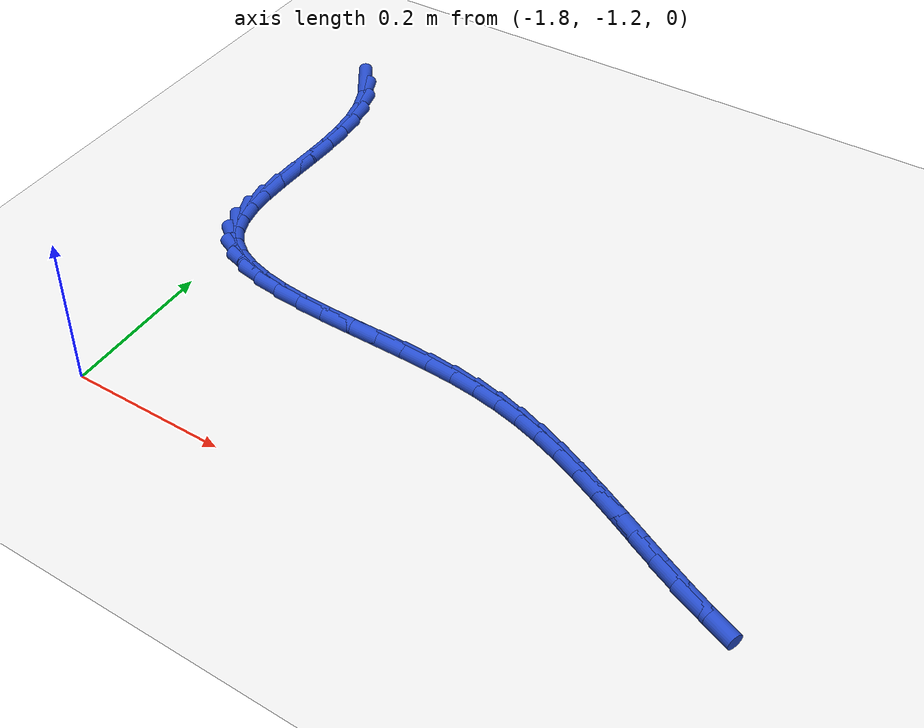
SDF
<sdf version="1.6">
 <world name="default">
  <model name="ground_plane">
   <static>1</static>
   <link name="link">
    <collision name="collision">
     <geometry><plane><normal>0 0 1</normal><size>100 100</size></plane></geometry>
     <surface><friction><ode><mu>100</mu><mu2>50</mu2></ode></friction></surface>
    </collision>
    <visual name="visual">
     <cast_shadows>0</cast_shadows>
     <geometry><plane><normal>0 0 1</normal><size>100 100</size></plane></geometry>
     <material>
      <script><uri>file://media/materials/scripts/gazebo.material</uri><name>Gazebo/WhiteGlow</name></script>
     </material>
    </visual>
   </link>
  </model>
  <model name="line">
   <link name="link_130">
    <pose>-1.8619223086051866 -0.5144403027133707 0.01 0 1.57 -1.0129530134572666</pose>
    <collision name="collision">
     <geometry><cylinder><radius>0.01</radius><length>0.08</length></cylinder></geometry>
    </collision>
    <visual name="visual">
     <material>
      <script><name>Gazebo/Blue</name><uri>file://media/materials/scripts/gazebo.material</uri></script>
     </material>
     <geometry><cylinder><radius>0.01</radius><length>0.08</length></cylinder></geometry>
    </visual>
   </link>
   <link name="link_131">
    <pose>-1.8442228041077935 -0.5428072034733926 0.01 0 1.57 -1.1925505319252674</pose>
    <collision name="collision">
     <geometry><cylinder><radius>0.01</radius><length>0.08</length></cylinder></geometry>
    </collision>
    <visual name="visual">
     <material>
      <script><name>Gazebo/Blue</name><uri>file://media/materials/scripts/gazebo.material</uri></script>
     </material>
     <geometry><cylinder><radius>0.01</radius><length>0.08</length></cylinder></geometry>
    </visual>
   </link>
   <link name="link_132">
    <pose>-1.8318650239090388 -0.5739053398328077 0.01 0 1.57 -1.3458821936916243</pose>
    <collision name="collision">
     <geometry><cylinder><radius>0.01</radius><length>0.08</length></cylinder></geometry>
    </collision>
    <visual name="visual">
     <material>
      <script><name>Gazebo/Blue</name><uri>file://media/materials/scripts/gazebo.material</uri></script>
     </material>
     <geometry><cylinder><radius>0.01</radius><length>0.08</length></cylinder></geometry>
    </visual>
   </link>
   <link name="link_133">
    <pose>-1.8242328059608754 -0.6072651217821721 0.01 0 1.57 -1.4597701901586702</pose>
    <collision name="collision">
     <geometry><cylinder><radius>0.01</radius><length>0.08</length></cylinder></geometry>
    </collision>
    <visual name="visual">
     <material>
      <script><name>Gazebo/Blue</name><uri>file://media/materials/scripts/gazebo.material</uri></script>
     </material>
     <geometry><cylinder><radius>0.01</radius><length>0.08</length></cylinder></geometry>
    </visual>
   </link>
   <link name="link_134">
    <pose>-1.8203355715829683 -0.6422227258220758 0.01 0 1.57 -1.5386875469178116</pose>
    <collision name="collision">
     <geometry><cylinder><radius>0.01</radius><length>0.08</length></cylinder></geometry>
    </collision>
    <visual name="visual">
     <material>
      <script><name>Gazebo/Blue</name><uri>file://media/materials/scripts/gazebo.material</uri></script>
     </material>
     <geometry><cylinder><radius>0.01</radius><length>0.08</length></cylinder></geometry>
    </visual>
   </link>
   <link name="link_135">
    <pose>-1.8191827398451437 -0.6781143272859775 0.01 0 1.57 1.554178374230105</pose>
    <collision name="collision">
     <geometry><cylinder><radius>0.01</radius><length>0.08</length></cylinder></geometry>
    </collision>
    <visual name="visual">
     <material>
      <script><name>Gazebo/Blue</name><uri>file://media/materials/scripts/gazebo.material</uri></script>
     </material>
     <geometry><cylinder><radius>0.01</radius><length>0.08</length></cylinder></geometry>
    </visual>
   </link>
   <link name="link_136">
    <pose>-1.81978372981723 -0.7142761015073329 0.01 0 1.57 1.5326738392321766</pose>
    <collision name="collision">
     <geometry><cylinder><radius>0.01</radius><length>0.08</length></cylinder></geometry>
    </collision>
    <visual name="visual">
     <material>
      <script><name>Gazebo/Blue</name><uri>file://media/materials/scripts/gazebo.material</uri></script>
     </material>
     <geometry><cylinder><radius>0.01</radius><length>0.08</length></cylinder></geometry>
    </visual>
   </link>
   <link name="link_137">
    <pose>-1.8211479605690533 -0.7500442238196003 0.01 0 1.57 1.53805466229874</pose>
    <collision name="collision">
     <geometry><cylinder><radius>0.01</radius><length>0.08</length></cylinder></geometry>
    </collision>
    <visual name="visual">
     <material>
      <script><name>Gazebo/Blue</name><uri>file://media/materials/scripts/gazebo.material</uri></script>
     </material>
     <geometry><cylinder><radius>0.01</radius><length>0.08</length></cylinder></geometry>
    </visual>
   </link>
   <link name="link_138">
    <pose>-1.822284851170441 -0.7847548695562374 0.01 0 1.57 -1.5683400695547278</pose>
    <collision name="collision">
     <geometry><cylinder><radius>0.01</radius><length>0.08</length></cylinder></geometry>
    </collision>
    <visual name="visual">
     <material>
      <script><name>Gazebo/Blue</name><uri>file://media/materials/scripts/gazebo.material</uri></script>
     </material>
     <geometry><cylinder><radius>0.01</radius><length>0.08</length></cylinder></geometry>
    </visual>
   </link>
   <link name="link_139">
    <pose>-1.8222038206912203 -0.8177442140507025 0.01 0 1.57 -1.4961244150197381</pose>
    <collision name="collision">
     <geometry><cylinder><radius>0.01</radius><length>0.08</length></cylinder></geometry>
    </collision>
    <visual name="visual">
     <material>
      <script><name>Gazebo/Blue</name><uri>file://media/materials/scripts/gazebo.material</uri></script>
     </material>
     <geometry><cylinder><radius>0.01</radius><length>0.08</length></cylinder></geometry>
    </visual>
   </link>
   <link name="link_140">
    <pose>-1.819914288201218 -0.8483484326364514 0.01 0 1.57 -1.3741838672670383</pose>
    <collision name="collision">
     <geometry><cylinder><radius>0.01</radius><length>0.08</length></cylinder></geometry>
    </collision>
    <visual name="visual">
     <material>
      <script><name>Gazebo/Blue</name><uri>file://media/materials/scripts/gazebo.material</uri></script>
     </material>
     <geometry><cylinder><radius>0.01</radius><length>0.08</length></cylinder></geometry>
    </visual>
   </link>
   <link name="link_141">
    <pose>-1.8144256727702612 -0.8759037006469426 0.01 0 1.57 -1.1851920941797658</pose>
    <collision name="collision">
     <geometry><cylinder><radius>0.01</radius><length>0.08</length></cylinder></geometry>
    </collision>
    <visual name="visual">
     <material>
      <script><name>Gazebo/Blue</name><uri>file://media/materials/scripts/gazebo.material</uri></script>
     </material>
     <geometry><cylinder><radius>0.01</radius><length>0.08</length></cylinder></geometry>
    </visual>
   </link>
   <link name="link_142">
    <pose>-1.8047473934681766 -0.8997461934156333 0.01 0 1.57 -0.9216007250402225</pose>
    <collision name="collision">
     <geometry><cylinder><radius>0.01</radius><length>0.08</length></cylinder></geometry>
    </collision>
    <visual name="visual">
     <material>
      <script><name>Gazebo/Blue</name><uri>file://media/materials/scripts/gazebo.material</uri></script>
     </material>
     <geometry><cylinder><radius>0.01</radius><length>0.08</length></cylinder></geometry>
    </visual>
   </link>
   <link name="link_143">
    <pose>-1.7899435880826655 -0.9192521955296631 0.01 0 1.57 -0.6497797094771671</pose>
    <collision name="collision">
     <geometry><cylinder><radius>0.01</radius><length>0.08</length></cylinder></geometry>
    </collision>
    <visual name="visual">
     <material>
      <script><name>Gazebo/Blue</name><uri>file://media/materials/scripts/gazebo.material</uri></script>
     </material>
     <geometry><cylinder><radius>0.01</radius><length>0.08</length></cylinder></geometry>
    </visual>
   </link>
   <link name="link_144">
    <pose>-1.76995507425498 -0.9344406048538487 0.01 0 1.57 -0.43533061770147563</pose>
    <collision name="collision">
     <geometry><cylinder><radius>0.01</radius><length>0.08</length></cylinder></geometry>
    </collision>
    <visual name="visual">
     <material>
      <script><name>Gazebo/Blue</name><uri>file://media/materials/scripts/gazebo.material</uri></script>
     </material>
     <geometry><cylinder><radius>0.01</radius><length>0.08</length></cylinder></geometry>
    </visual>
   </link>
   <link name="link_145">
    <pose>-1.7454284494033008 -0.9458476614206596 0.01 0 1.57 -0.28034573975041616</pose>
    <collision name="collision">
     <geometry><cylinder><radius>0.01</radius><length>0.08</length></cylinder></geometry>
    </collision>
    <visual name="visual">
     <material>
      <script><name>Gazebo/Blue</name><uri>file://media/materials/scripts/gazebo.material</uri></script>
     </material>
     <geometry><cylinder><radius>0.01</radius><length>0.08</length></cylinder></geometry>
    </visual>
   </link>
   <link name="link_146">
    <pose>-1.717030345066233 -0.954024290431544 0.01 0 1.57 -0.1722203314792906</pose>
    <collision name="collision">
     <geometry><cylinder><radius>0.01</radius><length>0.08</length></cylinder></geometry>
    </collision>
    <visual name="visual">
     <material>
      <script><name>Gazebo/Blue</name><uri>file://media/materials/scripts/gazebo.material</uri></script>
     </material>
     <geometry><cylinder><radius>0.01</radius><length>0.08</length></cylinder></geometry>
    </visual>
   </link>
   <link name="link_147">
    <pose>-1.68542739278238 -0.959521417087951 0.01 0 1.57 -0.09834701817224471</pose>
    <collision name="collision">
     <geometry><cylinder><radius>0.01</radius><length>0.08</length></cylinder></geometry>
    </collision>
    <visual name="visual">
     <material>
      <script><name>Gazebo/Blue</name><uri>file://media/materials/scripts/gazebo.material</uri></script>
     </material>
     <geometry><cylinder><radius>0.01</radius><length>0.08</length></cylinder></geometry>
    </visual>
   </link>
   <link name="link_148">
    <pose>-1.6512862240903463 -0.9628899665913291 0.01 0 1.57 -0.049688603313494735</pose>
    <collision name="collision">
     <geometry><cylinder><radius>0.01</radius><length>0.08</length></cylinder></geometry>
    </collision>
    <visual name="visual">
     <material>
      <script><name>Gazebo/Blue</name><uri>file://media/materials/scripts/gazebo.material</uri></script>
     </material>
     <geometry><cylinder><radius>0.01</radius><length>0.08</length></cylinder></geometry>
    </visual>
   </link>
   <link name="link_149">
    <pose>-1.6152734705287368 -0.9646808641431268 0.01 0 1.57 -0.02052956793500322</pose>
    <collision name="collision">
     <geometry><cylinder><radius>0.01</radius><length>0.08</length></cylinder></geometry>
    </collision>
    <visual name="visual">
     <material>
      <script><name>Gazebo/Blue</name><uri>file://media/materials/scripts/gazebo.material</uri></script>
     </material>
     <geometry><cylinder><radius>0.01</radius><length>0.08</length></cylinder></geometry>
    </visual>
   </link>
   <link name="link_150">
    <pose>-1.5780557636361567 -0.9654450349447932 0.01 0 1.57 -0.007637552357447298</pose>
    <collision name="collision">
     <geometry><cylinder><radius>0.01</radius><length>0.08</length></cylinder></geometry>
    </collision>
    <visual name="visual">
     <material>
      <script><name>Gazebo/Blue</name><uri>file://media/materials/scripts/gazebo.material</uri></script>
     </material>
     <geometry><cylinder><radius>0.01</radius><length>0.08</length></cylinder></geometry>
    </visual>
   </link>
   <link name="link_151">
    <pose>-1.5402997349512104 -0.9657334041977771 0.01 0 1.57 -0.009659942445255355</pose>
    <collision name="collision">
     <geometry><cylinder><radius>0.01</radius><length>0.08</length></cylinder></geometry>
    </collision>
    <visual name="visual">
     <material>
      <script><name>Gazebo/Blue</name><uri>file://media/materials/scripts/gazebo.material</uri></script>
     </material>
     <geometry><cylinder><radius>0.01</radius><length>0.08</length></cylinder></geometry>
    </visual>
   </link>
   <link name="link_152">
    <pose>-1.5026720160124998 -0.9660968971035264 0.01 0 1.57 -0.026859331603811737</pose>
    <collision name="collision">
     <geometry><cylinder><radius>0.01</radius><length>0.08</length></cylinder></geometry>
    </collision>
    <visual name="visual">
     <material>
      <script><name>Gazebo/Blue</name><uri>file://media/materials/scripts/gazebo.material</uri></script>
     </material>
     <geometry><cylinder><radius>0.01</radius><length>0.08</length></cylinder></geometry>
    </visual>
   </link>
   <link name="link_153">
    <pose>-1.4658392383586327 -0.9670864388634905 0.01 0 1.57 -0.061174408998721015</pose>
    <collision name="collision">
     <geometry><cylinder><radius>0.01</radius><length>0.08</length></cylinder></geometry>
    </collision>
    <visual name="visual">
     <material>
      <script><name>Gazebo/Blue</name><uri>file://media/materials/scripts/gazebo.material</uri></script>
     </material>
     <geometry><cylinder><radius>0.01</radius><length>0.08</length></cylinder></geometry>
    </visual>
   </link>
   <link name="link_154">
    <pose>-1.430468033528212 -0.9692529546791178 0.01 0 1.57 -0.11361669624155801</pose>
    <collision name="collision">
     <geometry><cylinder><radius>0.01</radius><length>0.08</length></cylinder></geometry>
    </collision>
    <visual name="visual">
     <material>
      <script><name>Gazebo/Blue</name><uri>file://media/materials/scripts/gazebo.material</uri></script>
     </material>
     <geometry><cylinder><radius>0.01</radius><length>0.08</length></cylinder></geometry>
    </visual>
   </link>
   <link name="link_155">
    <pose>-1.3970244871051931 -0.973069134792767 0.01 0 1.57 -0.1747461510676243</pose>
    <collision name="collision">
     <geometry><cylinder><radius>0.01</radius><length>0.08</length></cylinder></geometry>
    </collision>
    <visual name="visual">
     <material>
      <script><name>Gazebo/Blue</name><uri>file://media/materials/scripts/gazebo.material</uri></script>
     </material>
     <geometry><cylinder><radius>0.01</radius><length>0.08</length></cylinder></geometry>
    </visual>
   </link>
   <link name="link_156">
    <pose>-1.3651685705025032 -0.9786931963411061 0.01 0 1.57 -0.23911885679395303</pose>
    <collision name="collision">
     <geometry><cylinder><radius>0.01</radius><length>0.08</length></cylinder></geometry>
    </collision>
    <visual name="visual">
     <material>
      <script><name>Gazebo/Blue</name><uri>file://media/materials/scripts/gazebo.material</uri></script>
     </material>
     <geometry><cylinder><radius>0.01</radius><length>0.08</length></cylinder></geometry>
    </visual>
   </link>
   <link name="link_157">
    <pose>-1.3343577391927486 -0.9862043529908306 0.01 0 1.57 -0.30306895681309826</pose>
    <collision name="collision">
     <geometry><cylinder><radius>0.01</radius><length>0.08</length></cylinder></geometry>
    </collision>
    <visual name="visual">
     <material>
      <script><name>Gazebo/Blue</name><uri>file://media/materials/scripts/gazebo.material</uri></script>
     </material>
     <geometry><cylinder><radius>0.01</radius><length>0.08</length></cylinder></geometry>
    </visual>
   </link>
   <link name="link_158">
    <pose>-1.3040494486476646 -0.9956818184082967 0.01 0 1.57 -0.36206058095343935</pose>
    <collision name="collision">
     <geometry><cylinder><radius>0.01</radius><length>0.08</length></cylinder></geometry>
    </collision>
    <visual name="visual">
     <material>
      <script><name>Gazebo/Blue</name><uri>file://media/materials/scripts/gazebo.material</uri></script>
     </material>
     <geometry><cylinder><radius>0.01</radius><length>0.08</length></cylinder></geometry>
    </visual>
   </link>
   <link name="link_159">
    <pose>-1.273756028546943 -1.007155669482575 0.01 0 1.57 -0.40892456995783993</pose>
    <collision name="collision">
     <geometry><cylinder><radius>0.01</radius><length>0.08</length></cylinder></geometry>
    </collision>
    <visual name="visual">
     <material>
      <script><name>Gazebo/Blue</name><uri>file://media/materials/scripts/gazebo.material</uri></script>
     </material>
     <geometry><cylinder><radius>0.01</radius><length>0.08</length></cylinder></geometry>
    </visual>
   </link>
   <link name="link_160">
    <pose>-1.2433526662848562 -1.020331064359107 0.01 0 1.57 -0.44256640065481745</pose>
    <collision name="collision">
     <geometry><cylinder><radius>0.01</radius><length>0.08</length></cylinder></geometry>
    </collision>
    <visual name="visual">
     <material>
      <script><name>Gazebo/Blue</name><uri>file://media/materials/scripts/gazebo.material</uri></script>
     </material>
     <geometry><cylinder><radius>0.01</radius><length>0.08</length></cylinder></geometry>
    </visual>
   </link>
   <link name="link_161">
    <pose>-1.2128618593630485 -1.0347812532395664 0.01 0 1.57 -0.4641760510450615</pose>
    <collision name="collision">
     <geometry><cylinder><radius>0.01</radius><length>0.08</length></cylinder></geometry>
    </collision>
    <visual name="visual">
     <material>
      <script><name>Gazebo/Blue</name><uri>file://media/materials/scripts/gazebo.material</uri></script>
     </material>
     <geometry><cylinder><radius>0.01</radius><length>0.08</length></cylinder></geometry>
    </visual>
   </link>
   <link name="link_162">
    <pose>-1.1823065283721645 -1.0500791074731413 0.01 0 1.57 -0.47456672678530587</pose>
    <collision name="collision">
     <geometry><cylinder><radius>0.01</radius><length>0.08</length></cylinder></geometry>
    </collision>
    <visual name="visual">
     <material>
      <script><name>Gazebo/Blue</name><uri>file://media/materials/scripts/gazebo.material</uri></script>
     </material>
     <geometry><cylinder><radius>0.01</radius><length>0.08</length></cylinder></geometry>
    </visual>
   </link>
   <link name="link_163">
    <pose>-1.1517095939028497 -1.0657974984090186 0.01 0 1.57 -0.4741482467018987</pose>
    <collision name="collision">
     <geometry><cylinder><radius>0.01</radius><length>0.08</length></cylinder></geometry>
    </collision>
    <visual name="visual">
     <material>
      <script><name>Gazebo/Blue</name><uri>file://media/materials/scripts/gazebo.material</uri></script>
     </material>
     <geometry><cylinder><radius>0.01</radius><length>0.08</length></cylinder></geometry>
    </visual>
   </link>
   <link name="link_164">
    <pose>-1.1210939765457495 -1.0815092973963867 0.01 0 1.57 -0.462925749342555</pose>
    <collision name="collision">
     <geometry><cylinder><radius>0.01</radius><length>0.08</length></cylinder></geometry>
    </collision>
    <visual name="visual">
     <material>
      <script><name>Gazebo/Blue</name><uri>file://media/materials/scripts/gazebo.material</uri></script>
     </material>
     <geometry><cylinder><radius>0.01</radius><length>0.08</length></cylinder></geometry>
    </visual>
   </link>
   <link name="link_165">
    <pose>-1.0904825968915093 -1.096787375784433 0.01 0 1.57 -0.4405023411298295</pose>
    <collision name="collision">
     <geometry><cylinder><radius>0.01</radius><length>0.08</length></cylinder></geometry>
    </collision>
    <visual name="visual">
     <material>
      <script><name>Gazebo/Blue</name><uri>file://media/materials/scripts/gazebo.material</uri></script>
     </material>
     <geometry><cylinder><radius>0.01</radius><length>0.08</length></cylinder></geometry>
    </visual>
   </link>
   <link name="link_166">
    <pose>-1.059898375530775 -1.1112046049223445 0.01 0 1.57 -0.40608617243349077</pose>
    <collision name="collision">
     <geometry><cylinder><radius>0.01</radius><length>0.08</length></cylinder></geometry>
    </collision>
    <visual name="visual">
     <material>
      <script><name>Gazebo/Blue</name><uri>file://media/materials/scripts/gazebo.material</uri></script>
     </material>
     <geometry><cylinder><radius>0.01</radius><length>0.08</length></cylinder></geometry>
    </visual>
   </link>
  </model>
 </world>
</sdf>
